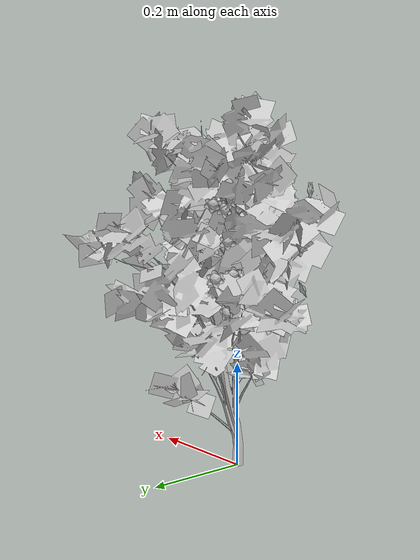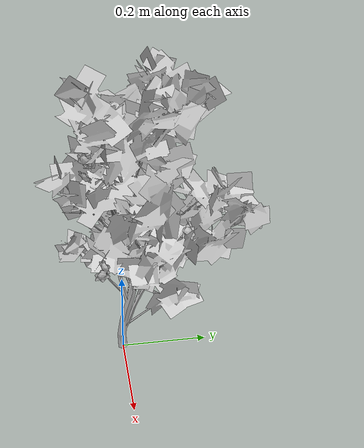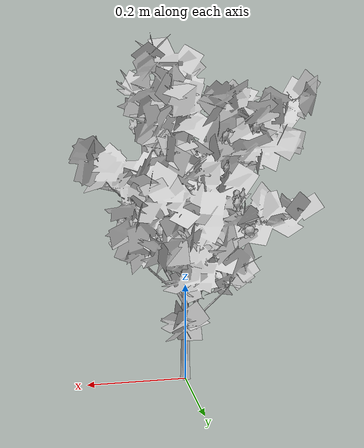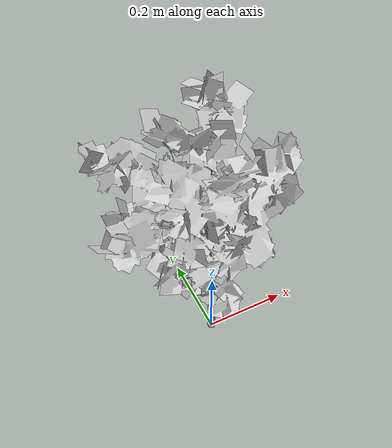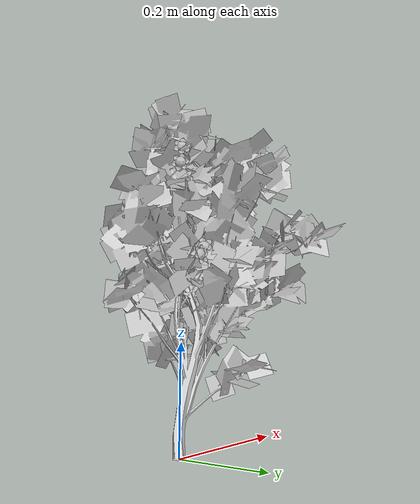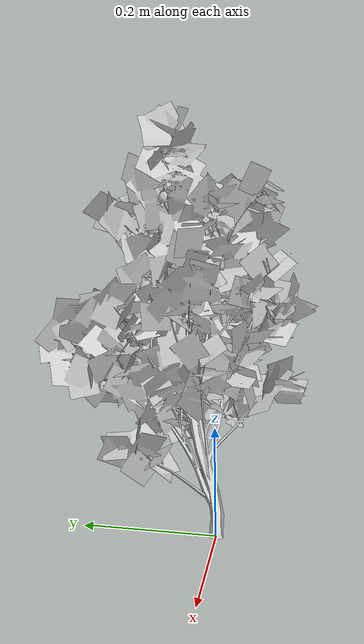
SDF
<?xml version="1.0" ?>
<sdf version="1.6">
  <model name="tree-flowers">
    <!--Skew-Seed:1963197035-->
    <static>true</static>
    <link name="link"/>
    <include>
      <uri>model://tree-mesh</uri>
      <pose>0 0 0 0 0 0</pose>
    </include>
    <joint name="tree_joint" type="fixed">
      <child>tree-mesh::link</child>
      <parent>link</parent>
    </joint>
    <include>
      <name>bramble_0</name>
      <uri>model://bramble</uri>
      <pose> -0.061909840064976546 0.07786245649599187 0.4661434827400931 -2.6427750423782177 1.422668249308652 0.0</pose>
    </include>
    <joint name="flower_joint_0" type="fixed">
      <child>bramble_0::flower_link</child>
      <parent>link</parent>
    </joint>
    <include>
      <name>bramble_1</name>
      <uri>model://bramble</uri>
      <pose> -0.06962976796264943 0.0895400369778445 0.5301596376035648 -1.9714386710656076 1.6147052998009102 0.0</pose>
    </include>
    <joint name="flower_joint_1" type="fixed">
      <child>bramble_1::flower_link</child>
      <parent>link</parent>
    </joint>
    <include>
      <name>bramble_2</name>
      <uri>model://bramble</uri>
      <pose> 0.11673268171246359 -0.051836669851521265 0.30660176218975216 -0.20060284274704998 1.6853513445570432 0.0</pose>
    </include>
    <joint name="flower_joint_2" type="fixed">
      <child>bramble_2::flower_link</child>
      <parent>link</parent>
    </joint>
    <include>
      <name>bramble_3</name>
      <uri>model://bramble</uri>
      <pose> -0.054416412450431745 0.10555205773765834 0.540065085419537 -2.4383462341530446 1.2030157870875586 0.0</pose>
    </include>
    <joint name="flower_joint_3" type="fixed">
      <child>bramble_3::flower_link</child>
      <parent>link</parent>
    </joint>
    <include>
      <name>bramble_4</name>
      <uri>model://bramble</uri>
      <pose> -0.11836431652118484 0.09627110612434252 0.5527617556830111 -2.195049336248138 1.1410567684586206 0.0</pose>
    </include>
    <joint name="flower_joint_4" type="fixed">
      <child>bramble_4::flower_link</child>
      <parent>link</parent>
    </joint>
    <include>
      <name>bramble_5</name>
      <uri>model://bramble</uri>
      <pose> -0.13312910642366746 -0.05421628362243422 0.5520199343947143 -4.289494165566892 1.3689048705635836 0.0</pose>
    </include>
    <joint name="flower_joint_5" type="fixed">
      <child>bramble_5::flower_link</child>
      <parent>link</parent>
    </joint>
    <include>
      <name>bramble_6</name>
      <uri>model://bramble</uri>
      <pose> 0.09406683950322292 0.065648460741658 0.43318448664620146 -0.2417245293948017 1.2755962175875633 0.0</pose>
    </include>
    <joint name="flower_joint_6" type="fixed">
      <child>bramble_6::flower_link</child>
      <parent>link</parent>
    </joint>
    <include>
      <name>bramble_7</name>
      <uri>model://bramble</uri>
      <pose> 0.08696318881747511 -0.07008756575331687 0.5495486367012473 0.537402464710914 1.831350628731583 0.0</pose>
    </include>
    <joint name="flower_joint_7" type="fixed">
      <child>bramble_7::flower_link</child>
      <parent>link</parent>
    </joint>
    <include>
      <name>bramble_8</name>
      <uri>model://bramble</uri>
      <pose> -0.07610567353360538 0.11874962363065882 0.4050802072560248 -2.3956658080216324 1.6930129105534388 0.0</pose>
    </include>
    <joint name="flower_joint_8" type="fixed">
      <child>bramble_8::flower_link</child>
      <parent>link</parent>
    </joint>
    <include>
      <name>bramble_9</name>
      <uri>model://bramble</uri>
      <pose> -0.09086844848279246 0.09045883837113237 0.4111141204723726 -2.641498924507136 1.4538129954658032 0.0</pose>
    </include>
    <joint name="flower_joint_9" type="fixed">
      <child>bramble_9::flower_link</child>
      <parent>link</parent>
    </joint>
    <include>
      <name>bramble_10</name>
      <uri>model://bramble</uri>
      <pose> 0.09510924561163794 0.07127651697685568 0.38488647756235617 -0.1415376538279124 1.0373854236463844 0.0</pose>
    </include>
    <joint name="flower_joint_10" type="fixed">
      <child>bramble_10::flower_link</child>
      <parent>link</parent>
    </joint>
    <include>
      <name>bramble_11</name>
      <uri>model://bramble</uri>
      <pose> -0.10454731125186699 0.11356007295291612 0.34649305877633824 -1.6913722445611359 0.9343397453437928 0.0</pose>
    </include>
    <joint name="flower_joint_11" type="fixed">
      <child>bramble_11::flower_link</child>
      <parent>link</parent>
    </joint>
    <include>
      <name>bramble_12</name>
      <uri>model://bramble</uri>
      <pose> -0.09853923394633624 -0.06871687860309345 0.3508095900777426 -4.153913389300708 2.331173584404857 0.0</pose>
    </include>
    <joint name="flower_joint_12" type="fixed">
      <child>bramble_12::flower_link</child>
      <parent>link</parent>
    </joint>
    <include>
      <name>bramble_13</name>
      <uri>model://bramble</uri>
      <pose> 0.0700795854850125 0.1292712545968532 0.3593529804871742 -0.3698378055206182 0.9412348784408134 0.0</pose>
    </include>
    <joint name="flower_joint_13" type="fixed">
      <child>bramble_13::flower_link</child>
      <parent>link</parent>
    </joint>
    <include>
      <name>bramble_14</name>
      <uri>model://bramble</uri>
      <pose> -0.08810969667803527 0.05694998091469579 0.4044810238999483 -2.4060811390134305 1.429736016514608 0.0</pose>
    </include>
    <joint name="flower_joint_14" type="fixed">
      <child>bramble_14::flower_link</child>
      <parent>link</parent>
    </joint>
    <include>
      <name>bramble_15</name>
      <uri>model://bramble</uri>
      <pose> 0.08456345633767329 -0.07049326526671461 0.5142756066169527 0.7235600915318531 2.21386821155861 0.0</pose>
    </include>
    <joint name="flower_joint_15" type="fixed">
      <child>bramble_15::flower_link</child>
      <parent>link</parent>
    </joint>
    <include>
      <name>bramble_16</name>
      <uri>model://bramble</uri>
      <pose> 0.1171806860568814 -0.04233421912941498 0.3247087995172236 0.9005865047856612 1.5164155134104087 0.0</pose>
    </include>
    <joint name="flower_joint_16" type="fixed">
      <child>bramble_16::flower_link</child>
      <parent>link</parent>
    </joint>
  </model>
</sdf>

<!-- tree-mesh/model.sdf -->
<sdf version="1.6">
  <model name="tree-mesh">
    <static>true</static>
    <link name="link">

      <collision name="collision">
        <geometry>
          <mesh>
            <uri>model://tree-mesh/meshes/new_tree.dae</uri>
            <scale>0.0625 0.0625 0.0625</scale>
          </mesh>
        </geometry>
      </collision>

      <!-- simplified collision for sake of speed since leaves shouldn't be blocking anyway -->

      <visual name="leaves">
        <geometry>
          <mesh>
            <uri>model://tree-mesh/meshes/leaves.dae</uri>
            <scale>0.0325 0.0325 0.0325</scale>
          </mesh>
        </geometry>
        <material>
          <script>
            <uri>model://tree-mesh/materials/scripts/</uri>
            <uri>model://tree-mesh/materials/textures/</uri>
            <name>NewTree/Branch</name>
          </script>
        </material>
      </visual>
      <visual name="bark">
        <geometry>
          <mesh>
            <uri>model://tree-mesh/meshes/bark.dae</uri>
            <scale>0.0325 0.0325 0.0325</scale>
          </mesh>
        </geometry>
        <material>
          <script>
            <uri>model://tree-mesh/materials/scripts/</uri>
            <uri>model://tree-mesh/materials/textures/</uri>
            <name>NewTree/Bark</name>
          </script>
        </material>
      </visual>
    </link>
  </model>
</sdf>

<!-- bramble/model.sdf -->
<sdf version="1.6">
  <model name="bramble">
    <static>true</static>
    <link name="flower_link">
      <collision name="body_collision">
        <geometry>
          <mesh>
            <uri>model://bramble/meshes/bramble.dae</uri>
            <scale>0.2 0.2 0.2</scale>
          </mesh>
        </geometry>
      </collision>
      <visual name="petals">
        <geometry>
          <mesh>
            <uri>model://bramble/meshes/bramble.dae</uri>
            <scale>0.2 0.2 0.2</scale>
            <submesh>
              <name>petal</name>
            </submesh>
          </mesh>
        </geometry>
        <material>
          <script>
            <uri>model://bramble/materials/scripts/</uri>
            <uri>model://bramble/materials/textures/</uri>
            <name>Bramble/Petal</name>
          </script>
        </material>
      </visual>
      <visual name="carpel">
        <geometry>
          <mesh>
            <uri>model://bramble/meshes/bramble.dae</uri>
            <scale>0.2 0.2 0.2</scale>
            <submesh>
              <name>carpel</name>
            </submesh>
          </mesh>
        </geometry>
        <material>
          <script>
            <uri>model://bramble/materials/scripts/</uri>
            <uri>model://bramble/materials/textures/</uri>
            <name>Bramble/Carpel</name>
          </script>
        </material>
      </visual>
      <visual name="stamen">
        <geometry>
          <mesh>
            <uri>model://bramble/meshes/bramble.dae</uri>
            <scale>0.2 0.2 0.2</scale>
            <submesh>
              <name>stamen</name>
            </submesh>
          </mesh>
        </geometry>
        <material>
          <script>
            <uri>model://bramble/materials/scripts/</uri>
            <uri>model://bramble/materials/textures/</uri>
            <name>Bramble/Stamen</name>
          </script>
        </material>
      </visual>
    </link>
  </model>
</sdf>
